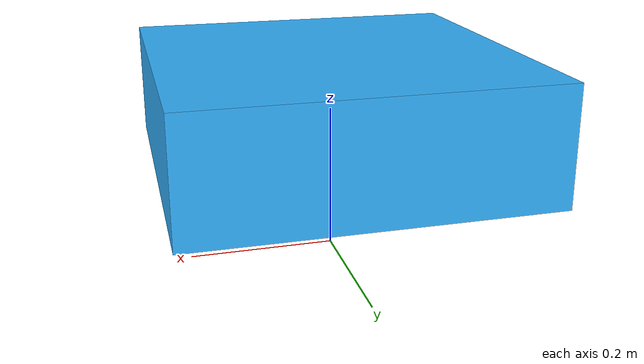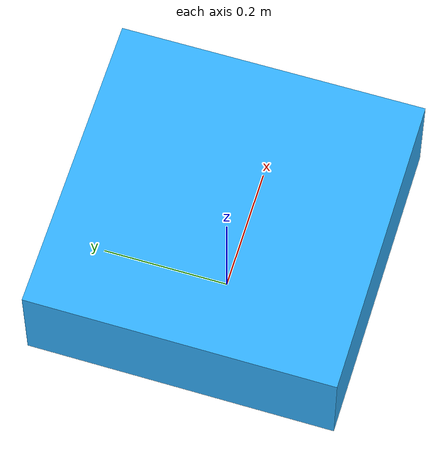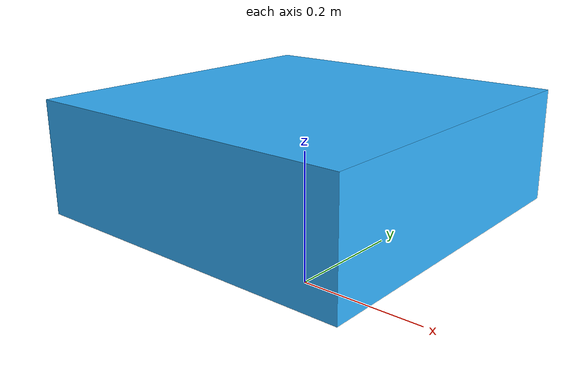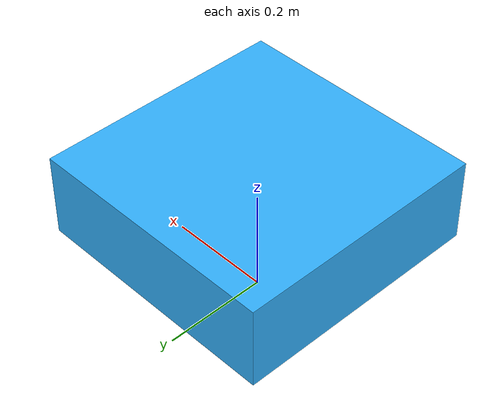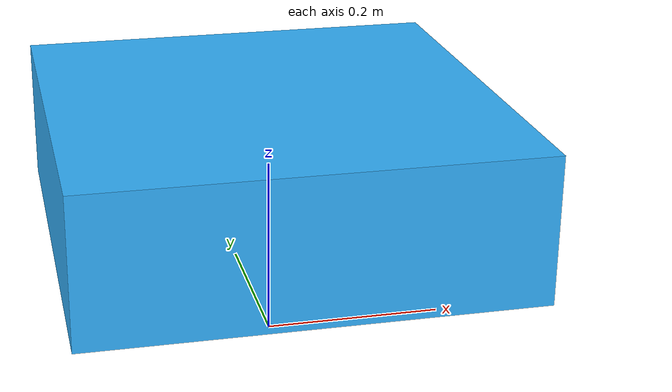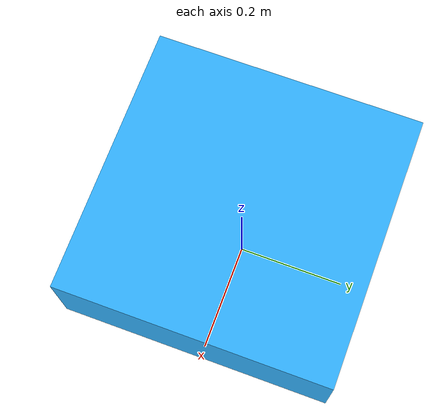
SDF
<?xml version="1.0" ?>
<sdf version="1.8">
  <model name="uav_alpha_lead">
    <pose>0 0 0.2 0 0 0</pose>
    <static>false</static>
    <self_collide>false</self_collide>

    <!-- Main Chassis Frame -->
    <link name="base_link">
      <pose>0 0 0 0 0 0</pose>
      <inertial>
        <mass>1.50</mass>
        <inertia>
          <ixx>0.025</ixx>
          <ixy>0</ixy>
          <ixz>0</ixz>
          <iyy>0.025</iyy>
          <iyz>0</iyz>
          <izz>0.045</izz>
        </inertia>
      </inertial>
      <collision name="chassis_collision">
        <geometry>
          <box><size>0.48 0.48 0.16</size></box>
        </geometry>
      </collision>
      <visual name="chassis_visual">
        <geometry>
          <box><size>0.48 0.48 0.16</size></box>
        </geometry>
        <material>
          <ambient>0.1 0.6 1.0 1</ambient>
          <diffuse>0.2 0.7 1.0 1</diffuse>
        </material>
      </visual>

      <!-- 1. IMU (250Hz High-Rate Accelerometer + Gyroscope) -->
      <sensor name="imu_sensor" type="imu">
        <always_on>true</always_on>
        <update_rate>250.0</update_rate>
        <topic>/uav_alpha/imu</topic>
        <imu>
          <angular_velocity>
            <x><noise type="gaussian"><stddev>0.0002</stddev><bias_mean>0.00001</bias_mean><bias_stddev>0.000005</bias_stddev></noise></x>
            <y><noise type="gaussian"><stddev>0.0002</stddev><bias_mean>0.00001</bias_mean><bias_stddev>0.000005</bias_stddev></noise></y>
            <z><noise type="gaussian"><stddev>0.0002</stddev><bias_mean>0.00001</bias_mean><bias_stddev>0.000005</bias_stddev></noise></z>
          </angular_velocity>
          <linear_acceleration>
            <x><noise type="gaussian"><stddev>0.01</stddev><bias_mean>0.001</bias_mean><bias_stddev>0.0005</bias_stddev></noise></x>
            <y><noise type="gaussian"><stddev>0.01</stddev><bias_mean>0.001</bias_mean><bias_stddev>0.0005</bias_stddev></noise></y>
            <z><noise type="gaussian"><stddev>0.01</stddev><bias_mean>0.001</bias_mean><bias_stddev>0.0005</bias_stddev></noise></z>
          </linear_acceleration>
        </imu>
      </sensor>

      <!-- 2. Barometer / Air Pressure (50Hz) -->
      <sensor name="air_pressure_sensor" type="air_pressure">
        <always_on>true</always_on>
        <update_rate>50.0</update_rate>
        <topic>/uav_alpha/air_pressure</topic>
        <air_pressure>
          <reference_altitude>0.0</reference_altitude>
          <pressure>
            <noise type="gaussian">
              <mean>0.0</mean>
              <stddev>1.2</stddev>
            </noise>
          </pressure>
        </air_pressure>
      </sensor>

      <!-- 3. 3-Axis Magnetometer (50Hz) -->
      <sensor name="magnetometer_sensor" type="magnetometer">
        <always_on>true</always_on>
        <update_rate>50.0</update_rate>
        <topic>/uav_alpha/magnetometer</topic>
        <magnetometer>
          <x><noise type="gaussian"><stddev>0.05</stddev></noise></x>
          <y><noise type="gaussian"><stddev>0.05</stddev></noise></y>
          <z><noise type="gaussian"><stddev>0.05</stddev></noise></z>
        </magnetometer>
      </sensor>

      <!-- 4. NavSat GNSS (10Hz WGS84 Geolocation Fix) -->
      <sensor name="navsat_sensor" type="navsat">
        <always_on>true</always_on>
        <update_rate>10.0</update_rate>
        <topic>/uav_alpha/navsat</topic>
        <navsat>
          <position_sensing>
            <horizontal><noise type="gaussian"><stddev>0.5</stddev></noise></horizontal>
            <vertical><noise type="gaussian"><stddev>1.2</stddev></noise></vertical>
          </position_sensing>
          <velocity_sensing>
            <horizontal><noise type="gaussian"><stddev>0.05</stddev></noise></horizontal>
            <vertical><noise type="gaussian"><stddev>0.08</stddev></noise></vertical>
          </velocity_sensing>
        </navsat>
      </sensor>

      <!-- 5. 360° 3D GPU LiDAR (10Hz 32-Channel OctoMap Scanner) -->
      <sensor name="lidar_sensor" type="gpu_lidar">
        <pose>0 0 0.08 0 0 0</pose>
        <always_on>true</always_on>
        <update_rate>10.0</update_rate>
        <topic>/uav_alpha/lidar/points</topic>
        <ray>
          <scan>
            <horizontal>
              <samples>720</samples>
              <resolution>1</resolution>
              <min_angle>-3.14159265</min_angle>
              <max_angle>3.14159265</max_angle>
            </horizontal>
            <vertical>
              <samples>32</samples>
              <resolution>1</resolution>
              <min_angle>-0.436332</min_angle>
              <max_angle>0.261799</max_angle>
            </vertical>
          </scan>
          <range>
            <min>0.10</min>
            <max>50.0</max>
            <resolution>0.01</resolution>
          </range>
          <noise>
            <type>gaussian</type>
            <mean>0.0</mean>
            <stddev>0.01</stddev>
          </noise>
        </ray>
      </sensor>

      <!-- 6. Downward Laser Altimeter / Rangefinder (50Hz WaveLander Precision) -->
      <sensor name="rangefinder_sensor" type="gpu_lidar">
        <pose>0 0 -0.04 0 1.5707963 0</pose>
        <always_on>true</always_on>
        <update_rate>50.0</update_rate>
        <topic>/uav_alpha/rangefinder/distance</topic>
        <ray>
          <scan>
            <horizontal><samples>1</samples><resolution>1</resolution><min_angle>0</min_angle><max_angle>0</max_angle></horizontal>
            <vertical><samples>1</samples><resolution>1</resolution><min_angle>0</min_angle><max_angle>0</max_angle></vertical>
          </scan>
          <range><min>0.05</min><max>40.0</max><resolution>0.005</resolution></range>
          <noise><type>gaussian</type><mean>0.0</mean><stddev>0.005</stddev></noise>
        </ray>
      </sensor>

      <!-- 7. RGB Optical Camera Sensor (1080p @ 30Hz) -->
      <sensor name="rgb_camera" type="camera">
        <pose>0.2 0 0.05 0 0 0</pose>
        <always_on>true</always_on>
        <update_rate>30.0</update_rate>
        <topic>/uav_alpha/rgb_camera/image_raw</topic>
        <camera>
          <horizontal_fov>1.4</horizontal_fov>
          <image>
            <width>1920</width>
            <height>1080</height>
            <format>R8G8B8</format>
          </image>
          <clip>
            <near>0.1</near>
            <far>300.0</far>
          </clip>
        </camera>
      </sensor>

      <!-- 8. Depth Sensor PointCloud Camera (15Hz) -->
      <sensor name="depth_camera" type="depth_camera">
        <pose>0.2 0 0.02 0 0 0</pose>
        <always_on>true</always_on>
        <update_rate>15.0</update_rate>
        <topic>/uav_alpha/depth_camera/points</topic>
        <camera>
          <horizontal_fov>1.5</horizontal_fov>
          <image>
            <width>640</width>
            <height>480</height>
            <format>R32F</format>
          </image>
          <clip>
            <near>0.25</near>
            <far>10.0</far>
          </clip>
        </camera>
      </sensor>

      <!-- 9. LWIR Thermal Infrared Camera Sensor (30Hz) -->
      <sensor name="thermal_camera" type="thermal">
        <pose>0.2 0 -0.05 0 0 0</pose>
        <always_on>true</always_on>
        <update_rate>30.0</update_rate>
        <topic>/uav_alpha/thermal_camera/image_raw</topic>
        <camera>
          <horizontal_fov>1.0471975</horizontal_fov>
          <image>
            <width>640</width>
            <height>480</height>
            <format>L8</format>
          </image>
          <clip>
            <near>0.1</near>
            <far>150.0</far>
          </clip>
        </camera>
      </sensor>

    </link>
  </model>
</sdf>
